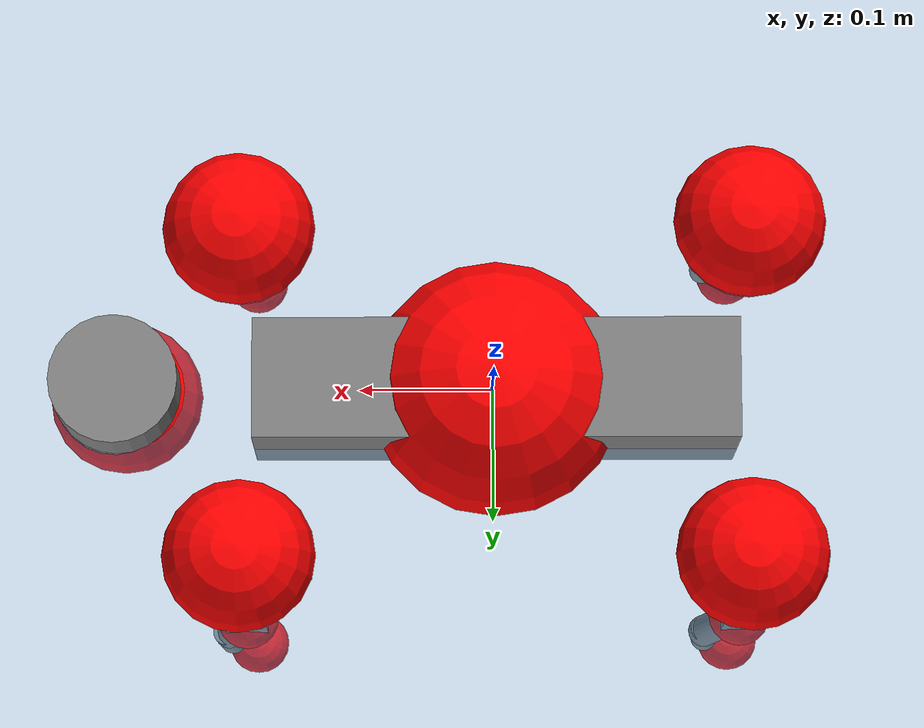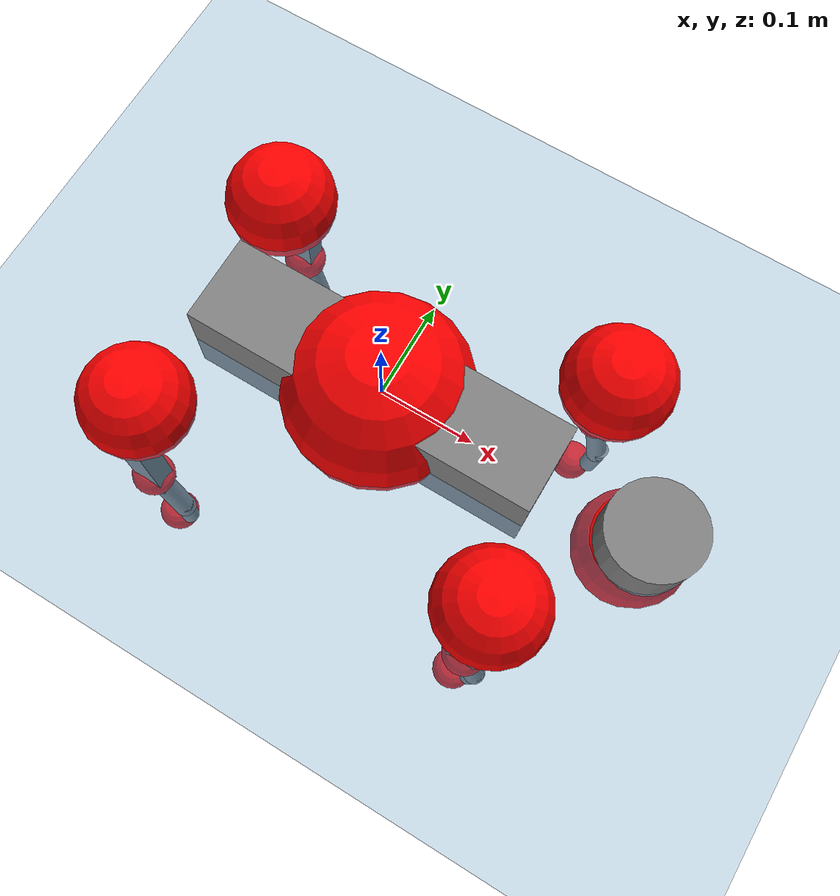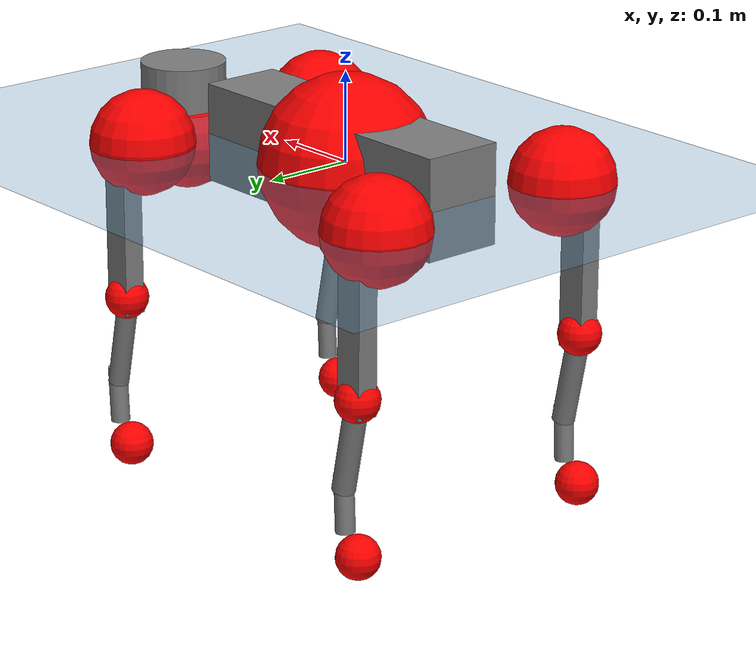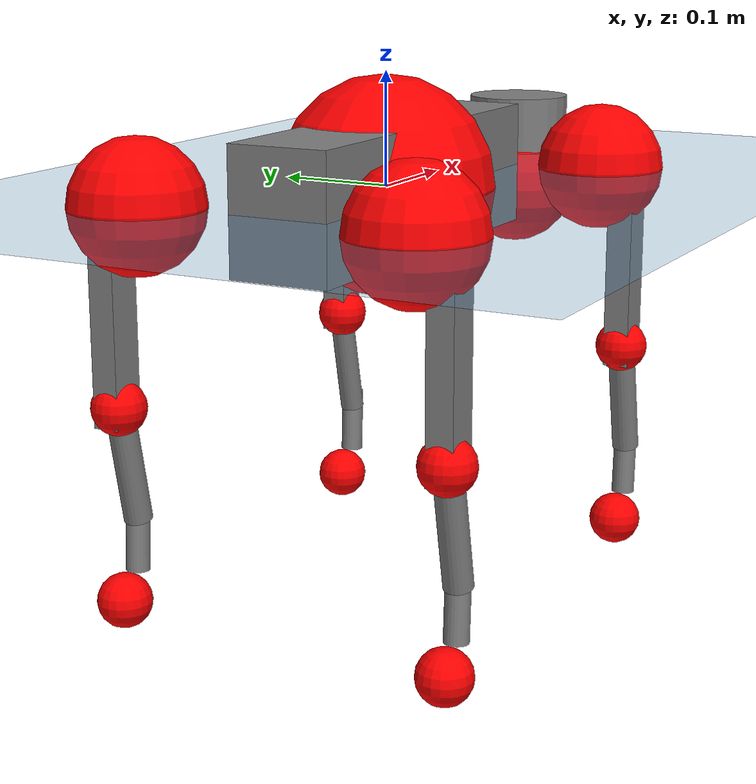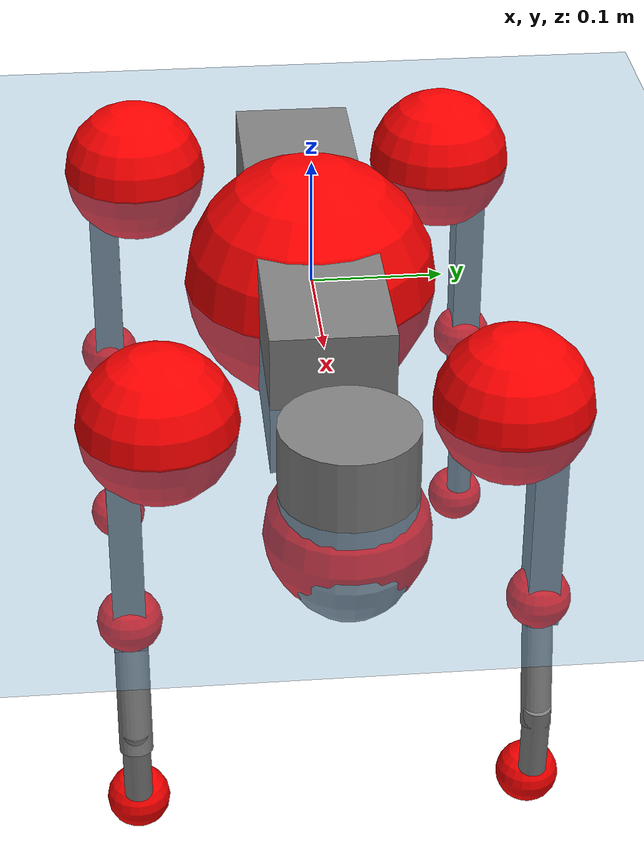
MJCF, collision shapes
<mujoco model="go2">
  <compiler angle="radian" assetdir="assets" balanceinertia="true" inertiafromgeom="false"/>

  <option timestep="0.005" density="1.2" viscosity="2e-05"/>

  <size nkey="1"/>

  <visual>
    <quality shadowsize="8192"/>
    <map shadowclip="0.5"/>
  </visual>

  <default>
    <default class="/">
      <geom contype="0" conaffinity="0" group="1" solref="-1000 -80"/>
      <site size="0.01 0.005 0.005" group="5"/>
      <general forcelimited="true" biastype="affine" gainprm="20" biasprm="0 -20 -0.5"/>
      <default class="go2">
        <joint armature="0.01" damping="0.01" frictionloss="0.2"/>
        <geom condim="1" margin="0.001"/>
        <default class="visual">
          <geom type="mesh" group="2"/>
        </default>
        <default class="collision">
          <geom group="3"/>
          <default class="foot">
            <geom size="0.022 0 0" condim="6" priority="1" friction="0.8 0.02 0.01" solimp="0.015 1 0.022"/>
          </default>
        </default>
        <default class="reward_collision_sphere">
          <geom group="5" rgba="1 0 0 1"/>
        </default>
      </default>
    </default>
  </default>

  <asset>
    <texture type="skybox" colorspace="auto" name="//unnamed_texture_0" builtin="gradient" rgb1="0.95 0.95 0.95" rgb2="0.95 0.95 0.95" width="100" height="600"/>
    <texture type="2d" colorspace="auto" name="texplane" builtin="checker" rgb1="0.345 0.575 0.748" rgb2="0.345 0.575 0.748" markrgb="1 1 1" width="512" height="512"/>
    <material name="MatPlane" class="/" texture="texplane" texuniform="true" texrepeat="2 2" specular="0.9"/>
    <material name="metal" class="/" rgba="0.9 0.95 0.95 1"/>
    <material name="black" class="/" rgba="0 0 0 1"/>
    <material name="white" class="/"/>
    <material name="gray" class="/" rgba="0.671705 0.692426 0.77427 1"/>
    <mesh name="base_0" class="/" file="base_0.obj"/>
    <mesh name="base_1" class="/" file="base_1.obj"/>
    <mesh name="base_2" class="/" file="base_2.obj"/>
    <mesh name="base_3" class="/" file="base_3.obj"/>
    <mesh name="base_4" class="/" file="base_4.obj"/>
    <mesh name="hip_0" class="/" file="hip_0.obj"/>
    <mesh name="hip_1" class="/" file="hip_1.obj"/>
    <mesh name="thigh_0" class="/" file="thigh_0.obj"/>
    <mesh name="thigh_1" class="/" file="thigh_1.obj"/>
    <mesh name="thigh_mirror_0" class="/" file="thigh_mirror_0.obj"/>
    <mesh name="thigh_mirror_1" class="/" file="thigh_mirror_1.obj"/>
    <mesh name="calf_0" class="/" file="calf_0.obj"/>
    <mesh name="calf_1" class="/" file="calf_1.obj"/>
    <mesh name="calf_mirror_0" class="/" file="calf_mirror_0.obj"/>
    <mesh name="calf_mirror_1" class="/" file="calf_mirror_1.obj"/>
    <mesh name="foot" class="/" file="foot.obj"/>
  </asset>

  <worldbody>
    <geom name="floor" class="/" size="100 100 0.125" type="plane" group="0" material="MatPlane"/>
    <light name="toplight_shadow" class="/" pos="0 0 5" dir="0.0990148 0.0990148 -0.990148" type="directional" ambient="0.04 0.04 0.04" diffuse="0.55 0.55 0.55" specular="0.12 0.12 0.12"/>
    <light name="toplight_fill" class="/" pos="0 0 5" dir="0.0990148 0.0990148 -0.990148" type="directional" castshadow="false" ambient="0.04 0.04 0.04" diffuse="0.3 0.3 0.3" specular="0.08 0.08 0.08"/>
    <body name="trunk" childclass="go2" pos="-0.00234676 -0.000705618 0.00100289" quat="1 -0.000589321 0.000395959 -0.000198724">
      <inertial pos="0.0184378 -0.00050438 -0.00435842" quat="0.00216119 0.711147 0.00109355 0.70304" mass="6.18665" diaginertia="0.109505 0.149178 0.00886547"/>
      <joint name="//unnamed_joint_0" type="free" armature="0" damping="0" frictionloss="0"/>
      <geom name="//unnamed_geom_1" class="visual" material="black" mesh="base_0"/>
      <geom name="//unnamed_geom_2" class="visual" material="black" mesh="base_1"/>
      <geom name="//unnamed_geom_3" class="visual" material="black" mesh="base_2"/>
      <geom name="//unnamed_geom_4" class="visual" material="white" mesh="base_3"/>
      <geom name="//unnamed_geom_5" class="visual" material="gray" mesh="base_4"/>
      <geom name="trunk_1" class="collision" size="0.181778 0.0451788 0.0550843" type="box"/>
      <geom name="trunk_2" class="collision" size="0.0483196 0.0434876" pos="0.285497 0 0.00812029" type="cylinder"/>
      <geom name="trunk_3" class="collision" size="0.0454204" pos="0.293511 0 -0.0487218"/>
      <geom name="//unnamed_geom_9" class="reward_collision_sphere" size="0.0966392"/>
      <geom name="//unnamed_geom_10" class="reward_collision_sphere" size="0.0579835" pos="0.280489 0 -0.0365413"/>
      <site name="imu" pos="-0.0259335 -0.00520331 0.0387311" size="0.00966392"/>
      <camera name="track" pos="0 -2.1708 0" quat="0.707107 0.707107 0 0" mode="trackcom"/>
      <camera name="ego_camera" pos="0.312544 0 0.0365413" quat="-0.5 -0.5 0.5 0.5"/>
      <body name="FL_hip" pos="0.193233 0.0505435 0.00181017" quat="0.999999 0.00101342 -0.00039773 -9.01134e-05">
        <inertial pos="-0.0078312 0.00291684 0.000218238" quat="0.4977 0.498415 0.506638 0.497187" mass="0.623766" diaginertia="0.000912134 0.000893623 0.000172717"/>
        <joint name="FL_hip_joint" pos="0 0 0" axis="0.999996 0.000448688 -0.00293651" stiffness="0.0034754" range="-1.05601 1.01009" armature="0.0102307" damping="0" frictionloss="0.184426"/>
        <geom name="//unnamed_geom_11" class="visual" material="metal" mesh="hip_0"/>
        <geom name="//unnamed_geom_12" class="visual" material="gray" mesh="hip_1"/>
        <geom name="//unnamed_geom_13" class="collision" size="0.044454 0.0193278" pos="0 0.086832 0" quat="0.707107 0.707107 0 0" type="cylinder"/>
        <geom name="//unnamed_geom_14" class="reward_collision_sphere" size="0.0579835" pos="0 0.075978 0"/>
        <body name="FL_thigh" pos="-0.000108624 0.103385 0.00164505" quat="1 -9.1529e-05 5.16104e-05 4.38177e-05">
          <inertial pos="-0.00147101 -0.0235388 -0.024481" quat="0.829409 0.0873085 -0.0200725 0.551411" mass="1.04791" diaginertia="0.00595121 0.00869301 0.000313712"/>
          <joint name="FL_thigh_joint" pos="0 0 0" axis="-0.00130397 0.999996 -0.00246273" stiffness="0.0145174" range="-1.59723 3.52045" armature="0.0101854" damping="0" frictionloss="0.187327"/>
          <geom name="//unnamed_geom_15" class="visual" material="metal" mesh="thigh_0"/>
          <geom name="//unnamed_geom_16" class="visual" material="gray" mesh="thigh_1"/>
          <geom name="//unnamed_geom_17" class="collision" size="0.102921 0.0118383 0.0164287" pos="0 0 -0.0864811" quat="0.707107 0 0.707107 0" type="box"/>
          <body name="FL_calf" pos="0.000143977 -0.00117938 -0.173762" quat="1 -9.12943e-05 -3.1473e-05 2.5808e-05">
            <inertial pos="0.00631761 -0.00079316 -0.115619" quat="0.710368 0.0102912 -0.0084923 0.703704" mass="0.2152" diaginertia="0.00152152 0.00218846 1.86458e-05"/>
            <joint name="FL_calf_joint" pos="0 0 0" axis="-0.00449452 0.999955 -0.00837557" range="-2.73433 -0.868065" armature="0.00982692" damping="0.00340579" frictionloss="0.190978"/>
            <geom name="//unnamed_geom_18" class="visual" material="gray" mesh="calf_0"/>
            <geom name="//unnamed_geom_19" class="visual" material="black" mesh="calf_1"/>
            <geom name="FL_calf0" class="collision" size="0.0115967 0.0579835" pos="0.00801396 0 -0.0487218" quat="0.994493 0 -0.104807 0" type="cylinder"/>
            <geom name="//unnamed_geom_21" class="collision" size="0.0106303 0.0314077" pos="0.0200349 0 -0.12018" quat="0.999688 0 0.0249974 0" type="cylinder"/>
            <geom name="//unnamed_geom_22" class="visual" pos="0 0 -0.172962" quat="1 0 0 0" material="black" mesh="foot"/>
            <geom name="FL_foot" class="foot" size="0.0150611" pos="-0.00200349 0 -0.172962"/>
            <geom name="//unnamed_geom_24" class="reward_collision_sphere" size="0.0241598"/>
            <geom name="//unnamed_geom_25" class="reward_collision_sphere" size="0.0241598" pos="-0.00200349 0 -0.172962"/>
            <site name="FL_foot" class="foot" pos="-0.00200349 0 -0.172962" size="0.00966392"/>
          </body>
        </body>
      </body>
      <body name="FR_hip" pos="0.19431 -0.048098 -0.000129067" quat="1 0.000153782 0.000372947 0.000313568">
        <inertial pos="-0.0035999 -0.00282087 -0.000309497" quat="0.497287 0.506338 0.499684 0.496632" mass="0.63684" diaginertia="0.000897915 0.000910914 0.000170373"/>
        <joint name="FR_hip_joint" pos="0 0 0" axis="0.999997 -0.00182418 0.00161444" range="-1.05257 1.05104" armature="0.00846631" damping="0.0200565" frictionloss="0.216459"/>
        <geom name="//unnamed_geom_26" class="visual" pos="0 2.3815e-09 1.02147e-07" quat="4.63268e-05 1 0 0" material="metal" mesh="hip_0"/>
        <geom name="//unnamed_geom_27" class="visual" pos="0 3.86069e-09 -2.52649e-07" quat="4.63268e-05 1 0 0" material="gray" mesh="hip_1"/>
        <geom name="//unnamed_geom_28" class="collision" size="0.044454 0.0193278" pos="0 -0.086832 0" quat="0.707107 0.707107 0 0" type="cylinder"/>
        <geom name="//unnamed_geom_29" class="reward_collision_sphere" size="0.0579835" pos="0 -0.075978 0"/>
        <body name="FR_thigh" pos="0.000606376 -0.102656 0.0026129" quat="0.999999 0.000488994 -0.000948464 -6.36157e-05">
          <inertial pos="-0.00434531 0.0218589 -0.0255176" quat="0.550576 -0.020435 0.0847045 0.830225" mass="1.02019" diaginertia="0.00606052 0.00901163 0.00030871"/>
          <joint name="FR_thigh_joint" pos="0 0 0" axis="-0.000168813 -0.999997 -0.00225341" range="-3.47153 1.58919" armature="0.00976464" damping="0.0138685" frictionloss="0.184694"/>
          <geom name="//unnamed_geom_30" class="visual" material="metal" mesh="thigh_mirror_0"/>
          <geom name="//unnamed_geom_31" class="visual" material="gray" mesh="thigh_mirror_1"/>
          <geom name="//unnamed_geom_32" class="collision" size="0.102921 0.0118383 0.0164287" pos="0 0 -0.0864811" quat="0.707107 0 0.707107 0" type="box"/>
          <body name="FR_calf" pos="9.74255e-05 0.000169344 -0.172713" quat="1 -5.00638e-05 -3.87945e-05 2.89497e-05">
            <inertial pos="0.00591185 0.000504612 -0.11411" quat="0.703632 -0.00567255 0.00182796 0.710539" mass="0.219749" diaginertia="0.00156606 0.00222353 1.91907e-05"/>
            <joint name="FR_calf_joint" pos="0 0 0" axis="0.00835247 -0.999953 -0.00497918" range="0.839104 2.71172" armature="0.00989036" damping="0.0093387" frictionloss="0.18626"/>
            <geom name="//unnamed_geom_33" class="visual" material="gray" mesh="calf_mirror_0"/>
            <geom name="//unnamed_geom_34" class="visual" material="black" mesh="calf_mirror_1"/>
            <geom name="FR_calf0" class="collision" size="0.0125631 0.0579835" pos="0.0100174 0 -0.0487218" quat="0.995004 0 -0.0998334 0" type="cylinder"/>
            <geom name="//unnamed_geom_36" class="collision" size="0.0106303 0.0314077" pos="0.0200349 0 -0.12018" quat="0.999688 0 0.0249974 0" type="cylinder"/>
            <geom name="//unnamed_geom_37" class="visual" pos="0 0 -0.172962" quat="1 0 0 0" material="black" mesh="foot"/>
            <geom name="FR_foot" class="foot" size="0.0232701" pos="-0.00200349 0 -0.172962"/>
            <geom name="//unnamed_geom_39" class="reward_collision_sphere" size="0.0241598"/>
            <geom name="//unnamed_geom_40" class="reward_collision_sphere" size="0.0241598" pos="-0.00200349 0 -0.172962"/>
            <site name="FR_foot" class="foot" pos="-0.00200349 0 -0.172962" size="0.00966392"/>
          </body>
        </body>
      </body>
      <body name="RL_hip" pos="-0.192741 0.0494284 -5.30826e-05" quat="0.999999 0.0005991 -0.00102019 0.000486483">
        <inertial pos="0.00768539 0.00209093 0.000150606" quat="0.505343 0.498446 0.497257 0.498914" mass="0.610065" diaginertia="0.000894568 0.000912135 0.000171836"/>
        <joint name="RL_hip_joint" pos="0 0 0" axis="-0.99989 0.0054793 -0.0138089" stiffness="0.000918262" range="-1.0427 1.05247" armature="0.00963165" damping="0.010084" frictionloss="0.18338"/>
        <geom name="//unnamed_geom_41" class="visual" pos="-1.65272e-09 0 -3.23971e-07" quat="4.63268e-05 0 1 0" material="metal" mesh="hip_0"/>
        <geom name="//unnamed_geom_42" class="visual" pos="-2.67926e-09 0 -2.87317e-07" quat="4.63268e-05 0 1 0" material="gray" mesh="hip_1"/>
        <geom name="//unnamed_geom_43" class="collision" size="0.044454 0.0193278" pos="0 0.086832 0" quat="0.707107 0.707107 0 0" type="cylinder"/>
        <geom name="//unnamed_geom_44" class="reward_collision_sphere" size="0.0579835" pos="0 0.075978 0"/>
        <body name="RL_thigh" pos="-0.0021782 0.102529 0.000587223" quat="0.999999 0.000969276 -0.00056906 -4.32497e-06">
          <inertial pos="-0.00337761 -0.0239911 -0.0265625" quat="0.829294 0.0840259 -0.0106945 0.552355" mass="1.01844" diaginertia="0.00593417 0.00866026 0.000306331"/>
          <joint name="RL_thigh_joint" pos="0 0 0" axis="0.000134966 1 -1.67039e-05" stiffness="0.00402107" range="-0.527515 4.52438" armature="0.00944966" damping="0" frictionloss="0.20344"/>
          <geom name="//unnamed_geom_45" class="visual" material="metal" mesh="thigh_0"/>
          <geom name="//unnamed_geom_46" class="visual" material="gray" mesh="thigh_1"/>
          <geom name="//unnamed_geom_47" class="collision" size="0.102921 0.0118383 0.0164287" pos="0 0 -0.0864811" quat="0.707107 0 0.707107 0" type="box"/>
          <body name="RL_calf" pos="0.000668844 -0.0015948 -0.173878" quat="1 -7.78239e-07 3.88403e-07 -2.0518e-07">
            <inertial pos="0.00629868 -0.000564433 -0.114896" quat="0.711022 0.00168773 -0.00493538 0.70315" mass="0.218045" diaginertia="0.00149869 0.00220191 1.86175e-05"/>
            <joint name="RL_calf_joint" pos="0 0 0" axis="0.00378595 0.999993 -0.000694409" stiffness="0.0013743" range="-2.70388 -0.834997" armature="0.0100103" damping="0" frictionloss="0.194437"/>
            <geom name="//unnamed_geom_48" class="visual" material="gray" mesh="calf_0"/>
            <geom name="//unnamed_geom_49" class="visual" material="black" mesh="calf_1"/>
            <geom name="RL_calf0" class="collision" size="0.0125631 0.0579835" pos="0.0100174 0 -0.0487218" quat="0.995004 0 -0.0998334 0" type="cylinder"/>
            <geom name="//unnamed_geom_51" class="collision" size="0.0106303 0.0314077" pos="0.0200349 0 -0.12018" quat="0.999688 0 0.0249974 0" type="cylinder"/>
            <geom name="//unnamed_geom_52" class="visual" pos="0 0 -0.172962" quat="1 0 0 0" material="black" mesh="foot"/>
            <geom name="RL_foot" class="foot" size="0.0199631" pos="-0.00200349 0 -0.172962"/>
            <geom name="//unnamed_geom_54" class="reward_collision_sphere" size="0.0241598"/>
            <geom name="//unnamed_geom_55" class="reward_collision_sphere" size="0.0241598" pos="-0.00200349 0 -0.172962"/>
            <site name="RL_foot" class="foot" pos="-0.00200349 0 -0.172962" size="0.00966392"/>
          </body>
        </body>
      </body>
      <body name="RR_hip" pos="-0.193766 -0.0532297 -0.00095943" quat="1 -9.97027e-05 -8.20555e-05 -0.000280495">
        <inertial pos="0.00524412 -0.000547307 5.89455e-05" quat="0.503807 0.502541 0.494931 0.498673" mass="0.614416" diaginertia="0.000893287 0.000903243 0.000172091"/>
        <joint name="RR_hip_joint" pos="0 0 0" axis="-0.999999 0.00114575 9.52759e-05" stiffness="0.002287" range="-1.04797 1.04771" armature="0.0108749" damping="0.0184818" frictionloss="0.175209"/>
        <geom name="//unnamed_geom_56" class="visual" pos="1.65562e-09 2.3815e-09 -4.26119e-07" quat="2.14617e-09 4.63268e-05 4.63268e-05 -1" material="metal" mesh="hip_0"/>
        <geom name="//unnamed_geom_57" class="visual" pos="2.6721e-09 3.86069e-09 -3.46674e-08" quat="2.14617e-09 4.63268e-05 4.63268e-05 -1" material="gray" mesh="hip_1"/>
        <geom name="//unnamed_geom_58" class="collision" size="0.044454 0.0193278" pos="0 -0.086832 0" quat="0.707107 0.707107 0 0" type="cylinder"/>
        <geom name="//unnamed_geom_59" class="reward_collision_sphere" size="0.0579835" pos="0 -0.075978 0"/>
        <body name="RR_thigh" pos="-0.000109497 -0.104172 -0.00269846" quat="1 0.000170759 -9.39326e-05 1.39282e-05">
          <inertial pos="-0.00351061 0.0248271 -0.026483" quat="0.551613 -0.0200582 0.0847671 0.829539" mass="1.06196" diaginertia="0.00615055 0.00892843 0.000306107"/>
          <joint name="RR_thigh_joint" pos="0 0 0" axis="0.000762203 -1 0.000214109" range="-4.57983 0.527283" armature="0.00948826" damping="0.0208079" frictionloss="0.201427"/>
          <geom name="//unnamed_geom_60" class="visual" material="metal" mesh="thigh_mirror_0"/>
          <geom name="//unnamed_geom_61" class="visual" material="gray" mesh="thigh_mirror_1"/>
          <geom name="//unnamed_geom_62" class="collision" size="0.102921 0.0118383 0.0164287" pos="0 0 -0.0864811" quat="0.707107 0 0.707107 0" type="box"/>
          <body name="RR_calf" pos="-0.00241307 -0.000571955 -0.173642" quat="1 -1.04113e-05 4.17135e-05 -5.52375e-05">
            <inertial pos="0.00860993 0.00075529 -0.115373" quat="0.70048 -0.00407329 0.00418078 0.713648" mass="0.217834" diaginertia="0.00145226 0.0021144 1.83019e-05"/>
            <joint name="RR_calf_joint" pos="0 0 0" axis="0.00654376 -0.999971 0.00396033" range="0.857202 2.77647" armature="0.00900074" damping="0.0134041" frictionloss="0.184786"/>
            <geom name="//unnamed_geom_63" class="visual" material="gray" mesh="calf_mirror_0"/>
            <geom name="//unnamed_geom_64" class="visual" material="black" mesh="calf_mirror_1"/>
            <geom name="RR_calf0" class="collision" size="0.0125631 0.0579835" pos="0.0100174 0 -0.0487218" quat="0.995004 0 -0.0998334 0" type="cylinder"/>
            <geom name="//unnamed_geom_66" class="collision" size="0.0106303 0.0314077" pos="0.0200349 0 -0.12018" quat="0.999688 0 0.0249974 0" type="cylinder"/>
            <geom name="//unnamed_geom_67" class="visual" pos="0 0 -0.172962" quat="1 0 0 0" material="black" mesh="foot"/>
            <geom name="RR_foot" class="foot" size="0.0229638" pos="-0.00200349 0 -0.172962"/>
            <geom name="//unnamed_geom_69" class="reward_collision_sphere" size="0.0241598"/>
            <geom name="//unnamed_geom_70" class="reward_collision_sphere" size="0.0241598" pos="-0.00200349 0 -0.172962"/>
            <site name="RR_foot" class="foot" pos="-0.00200349 0 -0.172962" size="0.00966392"/>
          </body>
        </body>
      </body>
    </body>
  </worldbody>

  <contact>
    <pair class="/" geom1="floor" geom2="FL_foot" name="//unnamed_contact_0"/>
    <pair class="/" geom1="floor" geom2="FR_foot" name="//unnamed_contact_1"/>
    <pair class="/" geom1="floor" geom2="RL_foot" name="//unnamed_contact_2"/>
    <pair class="/" geom1="floor" geom2="RR_foot" name="//unnamed_contact_3"/>
  </contact>

  <actuator>
    <general name="FL_hip" class="/" joint="FL_hip_joint" forcerange="-22.3973 22.3973" gainprm="19.4458" biasprm="0 -19.4458 -0.483755"/>
    <general name="FL_thigh" class="/" joint="FL_thigh_joint" forcerange="-23.3476 23.3476" gainprm="19.4458" biasprm="0 -19.4458 -0.483755"/>
    <general name="FL_calf" class="/" joint="FL_calf_joint" forcerange="-44.1101 44.1101" gainprm="19.4458" biasprm="0 -19.4458 -0.483755"/>
    <general name="FR_hip" class="/" joint="FR_hip_joint" forcerange="-24.993 24.993" gainprm="19.4458" biasprm="0 -19.4458 -0.483755"/>
    <general name="FR_thigh" class="/" joint="FR_thigh_joint" forcerange="-22.8056 22.8056" gainprm="19.4458" biasprm="0 -19.4458 -0.483755"/>
    <general name="FR_calf" class="/" joint="FR_calf_joint" forcerange="-41.8261 41.8261" gainprm="19.4458" biasprm="0 -19.4458 -0.483755"/>
    <general name="RL_hip" class="/" joint="RL_hip_joint" forcerange="-22.5203 22.5203" gainprm="19.4458" biasprm="0 -19.4458 -0.483755"/>
    <general name="RL_thigh" class="/" joint="RL_thigh_joint" forcerange="-22.5287 22.5287" gainprm="19.4458" biasprm="0 -19.4458 -0.483755"/>
    <general name="RL_calf" class="/" joint="RL_calf_joint" forcerange="-44.5943 44.5943" gainprm="19.4458" biasprm="0 -19.4458 -0.483755"/>
    <general name="RR_hip" class="/" joint="RR_hip_joint" forcerange="-23.1882 23.1882" gainprm="19.4458" biasprm="0 -19.4458 -0.483755"/>
    <general name="RR_thigh" class="/" joint="RR_thigh_joint" forcerange="-23.7713 23.7713" gainprm="19.4458" biasprm="0 -19.4458 -0.483755"/>
    <general name="RR_calf" class="/" joint="RR_calf_joint" forcerange="-47.6654 47.6654" gainprm="19.4458" biasprm="0 -19.4458 -0.483755"/>
  </actuator>

  <sensor>
    <gyro site="imu" name="imu_angular_velocity"/>
    <velocimeter site="imu" name="imu_linear_velocity"/>
    <framelinvel objtype="site" objname="FL_foot" name="FL_foot_global_linear_velocity"/>
    <framelinvel objtype="site" objname="FR_foot" name="FR_foot_global_linear_velocity"/>
    <framelinvel objtype="site" objname="RL_foot" name="RL_foot_global_linear_velocity"/>
    <framelinvel objtype="site" objname="RR_foot" name="RR_foot_global_linear_velocity"/>
  </sensor>

  <keyframe>
    <key name="home" qpos="0 0 0.325 1 0 0 0 0.1 0.8 -1.5 -0.1 -0.8 1.5 -0.1 0.8 -1.5 0.1 -0.8 1.5"/>
  </keyframe>
</mujoco>
